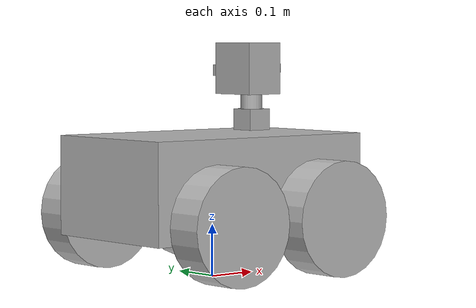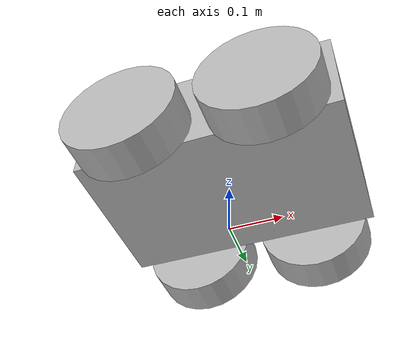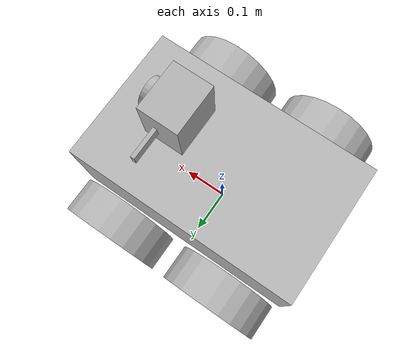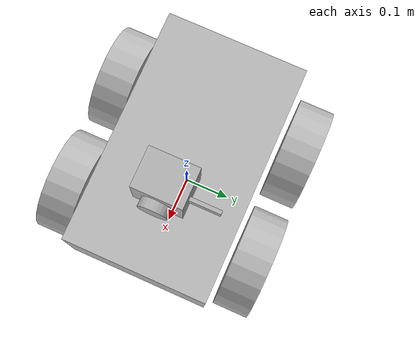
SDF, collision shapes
<?xml version="1.0" ?>
<sdf version="1.6">
  <model name="robot">

    <pose>0 0 0.180 0 0 0</pose>

    <link name="base_footprint"/>

    <link name="base_link">

      <inertial>
        <mass>14.0</mass>
        <inertia>
          <ixx>0.147116667</ixx>
          <ixy>0.0</ixy>
          <ixz>0.0</ixz>
          <iyy>0.334951167</iyy>
          <iyz>0.0</iyz>
          <izz>0.3978345</izz>
        </inertia>
      </inertial>
      <collision name="base_collision">
        <geometry>
          <box>
            <size>0.501 0.300 0.19</size>
          </box>
        </geometry>
      </collision>
      <visual name="base_visual">
        <geometry>
          <mesh>
            <uri>model://p3at/meshes/chassis.dae</uri>
          </mesh>
        </geometry>
      </visual>
    </link>

    <link name="imu_link">
      <sensor name="p3at_imu" type="imu">
        <always_on>true</always_on>
        <update_rate>200</update_rate>
        <imu>
          <angular_velocity>
            <x>
              <noise type="gaussian">
                <mean>0.0</mean>
                <stddev>2e-4</stddev>
              </noise>
            </x>
            <y>
              <noise type="gaussian">
                <mean>0.0</mean>
                <stddev>2e-4</stddev>
              </noise>
            </y>
            <z>
              <noise type="gaussian">
                <mean>0.0</mean>
                <stddev>2e-4</stddev>
              </noise>
            </z>
          </angular_velocity>
          <linear_acceleration>
            <x>
              <noise type="gaussian">
                <mean>0.0</mean>
                <stddev>1.7e-2</stddev>
              </noise>
            </x>
            <y>
              <noise type="gaussian">
                <mean>0.0</mean>
                <stddev>1.7e-2</stddev>
              </noise>
            </y>
            <z>
              <noise type="gaussian">
                <mean>0.0</mean>
                <stddev>1.7e-2</stddev>
              </noise>
            </z>
          </linear_acceleration>
        </imu>
        <plugin name="p3at_imu" filename="libgazebo_ros_imu_sensor.so">
          <initial_orientation_as_reference>false</initial_orientation_as_reference>
          <ros>
            <remapping>~/out:=imu</remapping>
          </ros>
        </plugin>
      </sensor>
    </link>

    <link name="base_scan">
      <pose>0.1 0 0.135 0 0 0</pose>
      <inertial>
        <mass>0.1</mass>
        <inertia>
          <ixx>0.6205208333e-04</ixx>
          <iyy>0.6205208333e-04</iyy>
          <izz>4.1927083333e-05</izz>
        </inertia>
      </inertial>
      <visual name="visual-base">
        <pose>0 0 -0.0145 0 0 0</pose>
        <geometry>
          <box>
            <size>0.05 0.05 0.041</size>
          </box>
        </geometry>
        <material>
          <ambient>0.3 0.3 0.3 1</ambient>
          <diffuse>0.7 0.7 0.7 1</diffuse>
          <specular>0.1 0.1 0.1 1</specular>
          <emissive>0 0 0 0</emissive>
        </material>
      </visual>
      <visual name="visual-top">
        <pose>0 0 0.0205 0 0 0</pose>
        <geometry>
          <cylinder>
            <radius>0.021</radius>
            <length>0.029</length>
          </cylinder>
        </geometry>
        <material>
          <ambient>0 0 0 1</ambient>
          <diffuse>0 0 0 1</diffuse>
          <specular>0.1 0.1 0.1 1</specular>
          <emissive>0 0 0 0</emissive>
        </material>
      </visual>
      <visual name="visual-top-back">
        <pose>-0.02 0 0.019 0 0 0</pose>
        <geometry>
          <box>
            <size>0.01 0.01 0.025</size>
          </box>
        </geometry>
        <material>
          <ambient>0.1 0.1 0.1 1</ambient>
          <diffuse>0.3 0.3 0.3 1</diffuse>
          <specular>0.1 0.1 0.1 1</specular>
          <emissive>0 0 0 0</emissive>
        </material>
      </visual>
      <collision name="collision-base">
        <pose>0 0 -0.0145 0 0 0</pose>
        <geometry>
          <box>
            <size>0.05 0.05 0.041</size>
          </box>
        </geometry>
      </collision>
      <collision name="collision-top">
        <pose>0 0 0.0205 0 0 0</pose>
        <geometry>
          <cylinder>
            <radius>0.021</radius>
            <length>0.029</length>
          </cylinder>
        </geometry>
      </collision>

      <sensor name="hls_lfcd_lds" type="ray">
        <always_on>true</always_on>
        <visualize>false</visualize>
        <pose>-0.064 0 0.021 0 0 0</pose>
        <update_rate>5</update_rate>
        <ray>
          <scan>
            <horizontal>
		          <samples>181</samples>
		          <resolution>1</resolution>
		          <min_angle>-1.570796</min_angle>
		          <max_angle>1.570796</max_angle>
            </horizontal>
          </scan>
          <range>
            <min>0.1</min>
            <max>30</max>
            <resolution>0.001</resolution>
          </range>
          <noise>
            <type>gaussian</type>
            <mean>0.0</mean>
            <stddev>0.01</stddev>
          </noise>
        </ray>
        <plugin name="p3at_laserscan" filename="libgazebo_ros_ray_sensor.so">
          <ros>
              <remapping>~/out:=scan</remapping>
          </ros>
          <output_type>sensor_msgs/LaserScan</output_type>
          <frame_name>base_scan</frame_name>
        </plugin>
      </sensor>
    </link>

    <!-- begin of sonar added by Arnoud Visser - July 2022 -->
    <link name="front_sonar">
        <pose> 0.21 0 +0.08 0 0 0 </pose>
        <inertial>
            <mass>0.1</mass>
            <pose> 0.0 0 0.0 0 0 0 </pose>
            <inertia>
                <ixx>1.0</ixx>
                <ixy>0.0</ixy>
                <ixz>0.0</ixz>
                <iyy>1.0</iyy>
                <iyz>0.0</iyz>
                <izz>1.0</izz>
            </inertia>
        </inertial>
        <sensor name="so0" type="ray">
            <always_on>true</always_on>
            <visualize>false</visualize>
            <pose>-0.065 +0.165 0 0 0 +1.5707963268</pose> <!-- 90 degrees -->
            <update_rate>3</update_rate>
            <ray>
                <scan>
                  <horizontal>
                      <samples>4</samples>
                      <angle_increment>0.0698131701</angle_increment><!-- 4 degrees -->
                      <min_angle>-0.1396263402</min_angle>
                      <max_angle>+0.1396263402</max_angle> <!-- opening angle of 16 degrees -->
                  </horizontal>
                  <vertical>
                      <samples>4</samples>
                      <angle_increment>0.0698131701</angle_increment><!-- 4 degrees -->
                      <min_angle>-0.1396263402</min_angle>
                      <max_angle>+0.1396263402</max_angle> <!-- opening angle of 16 degrees -->
                  </vertical>
                </scan>
                <range>
                    <min>0.1</min>
                    <max>4</max>
                    <resolution>0.2</resolution>
                </range>
                <noise>
                    <type>gaussian</type>
                    <mean>0.0</mean>
                    <stddev>0.1</stddev>
                </noise>
            </ray>
            <plugin name="p3at_front_sonar" filename="libgazebo_ros_ray_sensor.so">
                 <ros>
                     <remapping>~/out:=so0/range</remapping>
                 </ros>
                 <output_type>sensor_msgs/Range</output_type>
                 <frame_name>front_sonar</frame_name>
            </plugin>
        </sensor>
        <sensor name="so1" type="ray">
            <always_on>true</always_on>
            <visualize>false</visualize>
            <pose>-0.035 +0.1025 0 0 0 +0.872664626</pose> <!-- 50 degrees -->
            <update_rate>3</update_rate>
            <ray>
                <scan>
                  <horizontal>
                      <samples>4</samples>
                      <angle_increment>0.0698131701</angle_increment><!-- 4 degrees -->
                      <min_angle>-0.1396263402</min_angle>
                      <max_angle>+0.1396263402</max_angle> <!-- opening angle of 16 degrees -->
                  </horizontal>
                  <vertical>
                      <samples>4</samples>
                      <angle_increment>0.0698131701</angle_increment><!-- 4 degrees -->
                      <min_angle>-0.1396263402</min_angle>
                      <max_angle>+0.1396263402</max_angle> <!-- opening angle of 16 degrees -->
                  </vertical>
                </scan>
                <range>
                    <min>0.1</min>
                    <max>4</max>
                    <resolution>0.2</resolution>
                </range>
                <noise>
                    <type>gaussian</type>
                    <mean>0.0</mean>
                    <stddev>0.1</stddev>
                </noise>
            </ray>
            <plugin name="p3at_front_sonar" filename="libgazebo_ros_ray_sensor.so">
                 <ros>
                     <remapping>~/out:=so1/range</remapping>
                 </ros>
                 <output_type>sensor_msgs/Range</output_type>
                 <frame_name>front_sonar</frame_name>
            </plugin>
        </sensor>
        <sensor name="so2" type="ray">
            <always_on>true</always_on>
            <visualize>false</visualize>
            <pose>-0.02 +0.0575 0 0 0 +0.5235987756</pose> <!-- 30 degrees -->
            <update_rate>3</update_rate>
            <ray>
                <scan>
                  <horizontal>
                      <samples>4</samples>
                      <angle_increment>0.0698131701</angle_increment><!-- 4 degrees -->
                      <min_angle>-0.1396263402</min_angle>
                      <max_angle>+0.1396263402</max_angle> <!-- opening angle of 16 degrees -->
                  </horizontal>
                  <vertical>
                      <samples>4</samples>
                      <angle_increment>0.0698131701</angle_increment><!-- 4 degrees -->
                      <min_angle>-0.1396263402</min_angle>
                      <max_angle>+0.1396263402</max_angle> <!-- opening angle of 16 degrees -->
                  </vertical>
                </scan>
                <range>
                    <min>0.1</min>
                    <max>4</max>
                    <resolution>0.2</resolution>
                </range>
                <noise>
                    <type>gaussian</type>
                    <mean>0.0</mean>
                    <stddev>0.1</stddev>
                </noise>
            </ray>
            <plugin name="p3at_front_sonar" filename="libgazebo_ros_ray_sensor.so">
                 <ros>
                     <remapping>~/out:=so2/range</remapping>
                 </ros>
                 <output_type>sensor_msgs/Range</output_type>
                 <frame_name>front_sonar</frame_name>
            </plugin>
        </sensor>
        <sensor name="so3" type="ray">
            <always_on>true</always_on>
            <visualize>false</visualize>
            <pose>-0.01 +0.0115 0 0 0 +0.1745329252</pose> <!-- 10 degrees -->
            <update_rate>3</update_rate>
            <ray>
                <scan>
                  <horizontal>
                      <samples>4</samples>
                      <angle_increment>0.0698131701</angle_increment><!-- 4 degrees -->
                      <min_angle>-0.1396263402</min_angle>
                      <max_angle>+0.1396263402</max_angle> <!-- opening angle of 16 degrees -->
                  </horizontal>
                  <vertical>
                      <samples>4</samples>
                      <angle_increment>0.0698131701</angle_increment><!-- 4 degrees -->
                      <min_angle>-0.1396263402</min_angle>
                      <max_angle>+0.1396263402</max_angle> <!-- opening angle of 16 degrees -->
                  </vertical>
                </scan>
                <range>
                    <min>0.1</min>
                    <max>4</max>
                    <resolution>0.2</resolution>
                </range>
                <noise>
                    <type>gaussian</type>
                    <mean>0.0</mean>
                    <stddev>0.1</stddev>
                </noise>
            </ray>
            <plugin name="p3at_front_sonar" filename="libgazebo_ros_ray_sensor.so">
                 <ros>
                     <remapping>~/out:=so3/range</remapping>
                 </ros>
                 <output_type>sensor_msgs/Range</output_type>
                 <frame_name>front_sonar</frame_name>
            </plugin>
        </sensor>
        <sensor name="so4" type="ray">
            <always_on>true</always_on>
            <visualize>false</visualize>
            <pose>-0.01 -0.0115 0 0 0 -0.1745329252</pose> <!-- 10 degrees -->
            <update_rate>3</update_rate>
            <ray>
                <scan>
                  <horizontal>
                      <samples>4</samples>
                      <angle_increment>0.0698131701</angle_increment><!-- 4 degrees -->
                      <min_angle>-0.1396263402</min_angle>
                      <max_angle>+0.1396263402</max_angle> <!-- opening angle of 16 degrees -->
                  </horizontal>
                  <vertical>
                      <samples>4</samples>
                      <angle_increment>0.0698131701</angle_increment><!-- 4 degrees -->
                      <min_angle>-0.1396263402</min_angle>
                      <max_angle>+0.1396263402</max_angle> <!-- opening angle of 16 degrees -->
                  </vertical>
                </scan>
                <range>
                    <min>0.1</min>
                    <max>4</max>
                    <resolution>0.2</resolution>
                </range>
                <noise>
                    <type>gaussian</type>
                    <mean>0.0</mean>
                    <stddev>0.1</stddev>
                </noise>
            </ray>
            <plugin name="p3at_front_sonar" filename="libgazebo_ros_ray_sensor.so">
                 <ros>
                     <remapping>~/out:=so4/range</remapping>
                 </ros>
                 <output_type>sensor_msgs/Range</output_type>
                 <frame_name>front_sonar</frame_name>
            </plugin>
        </sensor>
        <sensor name="so5" type="ray">
            <always_on>true</always_on>
            <visualize>false</visualize>
            <pose>-0.02 -0.0575 0 0 0 -0.5235987756</pose> <!-- 30 degrees -->
            <update_rate>3</update_rate>
            <ray>
                <scan>
                  <horizontal>
                      <samples>4</samples>
                      <angle_increment>0.0698131701</angle_increment><!-- 4 degrees -->
                      <min_angle>-0.1396263402</min_angle>
                      <max_angle>+0.1396263402</max_angle> <!-- opening angle of 16 degrees -->
                  </horizontal>
                  <vertical>
                      <samples>4</samples>
                      <angle_increment>0.0698131701</angle_increment><!-- 4 degrees -->
                      <min_angle>-0.1396263402</min_angle>
                      <max_angle>+0.1396263402</max_angle> <!-- opening angle of 16 degrees -->
                  </vertical>
                </scan>
                <range>
                    <min>0.1</min>
                    <max>4</max>
                    <resolution>0.2</resolution>
                </range>
                <noise>
                    <type>gaussian</type>
                    <mean>0.0</mean>
                    <stddev>0.1</stddev>
                </noise>
            </ray>
            <plugin name="p3at_front_sonar" filename="libgazebo_ros_ray_sensor.so">
                 <ros>
                     <remapping>~/out:=so5/range</remapping>
                 </ros>
                 <output_type>sensor_msgs/Range</output_type>
                 <frame_name>front_sonar</frame_name>
            </plugin>
        </sensor>
        <sensor name="so6" type="ray">
            <always_on>true</always_on>
            <visualize>false</visualize>
            <pose>-0.035 -0.1025 0 0 0 -0.872664626</pose> <!-- 50 degrees -->
            <update_rate>3</update_rate>
            <ray>
                <scan>
                  <horizontal>
                      <samples>4</samples>
                      <angle_increment>0.0698131701</angle_increment><!-- 4 degrees -->
                      <min_angle>-0.1396263402</min_angle>
                      <max_angle>+0.1396263402</max_angle> <!-- opening angle of 16 degrees -->
                  </horizontal>
                  <vertical>
                      <samples>4</samples>
                      <angle_increment>0.0698131701</angle_increment><!-- 4 degrees -->
                      <min_angle>-0.1396263402</min_angle>
                      <max_angle>+0.1396263402</max_angle> <!-- opening angle of 16 degrees -->
                  </vertical>
                </scan>
                <range>
                    <min>0.1</min>
                    <max>4</max>
                    <resolution>0.2</resolution>
                </range>
                <noise>
                    <type>gaussian</type>
                    <mean>0.0</mean>
                    <stddev>0.1</stddev>
                </noise>
            </ray>
            <plugin name="p3at_front_sonar" filename="libgazebo_ros_ray_sensor.so">
                 <ros>
                     <remapping>~/out:=so6/range</remapping>
                 </ros>
                 <output_type>sensor_msgs/Range</output_type>
                 <frame_name>front_sonar</frame_name>
            </plugin>
        </sensor>
        <sensor name="so7" type="ray">
            <always_on>true</always_on>
            <visualize>false</visualize>
            <pose>-0.065 -0.165 0 0 0 -1.5707963268</pose> <!-- 90 degrees -->
            <update_rate>3</update_rate>
            <ray>
                <scan>
                  <horizontal>
                      <samples>4</samples>
                      <angle_increment>0.0698131701</angle_increment><!-- 4 degrees -->
                      <min_angle>-0.1396263402</min_angle>
                      <max_angle>+0.1396263402</max_angle> <!-- opening angle of 16 degrees -->
                  </horizontal>
                  <vertical>
                      <samples>4</samples>
                      <angle_increment>0.0698131701</angle_increment><!-- 4 degrees -->
                      <min_angle>-0.1396263402</min_angle>
                      <max_angle>+0.1396263402</max_angle> <!-- opening angle of 16 degrees -->
                  </vertical>
                </scan>
                <range>
                    <min>0.1</min>
                    <max>4</max>
                    <resolution>0.2</resolution>
                </range>
                <noise>
                    <type>gaussian</type>
                    <mean>0.0</mean>
                    <stddev>0.1</stddev>
                </noise>
            </ray>
            <plugin name="p3at_front_sonar" filename="libgazebo_ros_ray_sensor.so">
                 <ros>
                     <remapping>~/out:=so7/range</remapping>
                 </ros>
                 <output_type>sensor_msgs/Range</output_type>
                 <frame_name>front_sonar</frame_name>
            </plugin>
        </sensor>
    </link>
    <joint name="base_front_joint" type="fixed">
        <pose> 0.0 0 0.0 0 0 0 </pose>
        <parent>base_link</parent>
        <child>front_sonar</child>
    </joint>
    <link name="back_sonar">
        <pose> -0.21 0 +0.08 0 0 3.1415926536 </pose>
        <inertial>
            <mass>0.1</mass>
            <pose> 0.0 0 0.0 0 0 0 </pose>
            <inertia>
                <ixx>1.0</ixx>
                <ixy>0.0</ixy>
                <ixz>0.0</ixz>
                <iyy>1.0</iyy>
                <iyz>0.0</iyz>
                <izz>1.0</izz>
            </inertia>
        </inertial>
        <sensor name="so8" type="ray">
            <always_on>true</always_on>
            <visualize>false</visualize>
            <pose>-0.065 +0.165 0 0 0 +1.5707963268</pose> <!-- 90 degrees -->
            <update_rate>3</update_rate>
            <ray>
                <scan>
                  <horizontal>
                      <samples>4</samples>
                      <angle_increment>0.0698131701</angle_increment><!-- 4 degrees -->
                      <min_angle>-0.1396263402</min_angle>
                      <max_angle>+0.1396263402</max_angle> <!-- opening angle of 16 degrees -->
                  </horizontal>
                  <vertical>
                      <samples>4</samples>
                      <angle_increment>0.0698131701</angle_increment><!-- 4 degrees -->
                      <min_angle>-0.1396263402</min_angle>
                      <max_angle>+0.1396263402</max_angle> <!-- opening angle of 16 degrees -->
                  </vertical>
                </scan>
                <range>
                    <min>0.1</min>
                    <max>4</max>
                    <resolution>0.2</resolution>
                </range>
                <noise>
                    <type>gaussian</type>
                    <mean>0.0</mean>
                    <stddev>0.1</stddev>
                </noise>
            </ray>
            <plugin name="p3at_back_sonar" filename="libgazebo_ros_ray_sensor.so">
                 <ros>
                     <remapping>~/out:=so8/range</remapping>
                 </ros>
                 <output_type>sensor_msgs/Range</output_type>
                 <frame_name>back_sonar</frame_name>
            </plugin>
        </sensor>
        <sensor name="so9" type="ray">
            <always_on>true</always_on>
            <visualize>false</visualize>
            <pose>-0.035 +0.1025 0 0 0 +0.872664626</pose> <!-- 50 degrees -->
            <update_rate>3</update_rate>
            <ray>
                <scan>
                  <horizontal>
                      <samples>4</samples>
                      <angle_increment>0.0698131701</angle_increment><!-- 4 degrees -->
                      <min_angle>-0.1396263402</min_angle>
                      <max_angle>+0.1396263402</max_angle> <!-- opening angle of 16 degrees -->
                  </horizontal>
                  <vertical>
                      <samples>4</samples>
                      <angle_increment>0.0698131701</angle_increment><!-- 4 degrees -->
                      <min_angle>-0.1396263402</min_angle>
                      <max_angle>+0.1396263402</max_angle> <!-- opening angle of 16 degrees -->
                  </vertical>
                </scan>
                <range>
                    <min>0.1</min>
                    <max>4</max>
                    <resolution>0.2</resolution>
                </range>
                <noise>
                    <type>gaussian</type>
                    <mean>0.0</mean>
                    <stddev>0.1</stddev>
                </noise>
            </ray>
            <plugin name="p3at_back_sonar" filename="libgazebo_ros_ray_sensor.so">
                 <ros>
                     <remapping>~/out:=so9/range</remapping>
                 </ros>
                 <output_type>sensor_msgs/Range</output_type>
                 <frame_name>back_sonar</frame_name>
            </plugin>
        </sensor>
        <sensor name="so10" type="ray">
            <always_on>true</always_on>
            <visualize>false</visualize>
            <pose>-0.02 +0.0575 0 0 0 +0.5235987756</pose> <!-- 30 degrees -->
            <update_rate>3</update_rate>
            <ray>
                <scan>
                  <horizontal>
                      <samples>4</samples>
                      <angle_increment>0.0698131701</angle_increment><!-- 4 degrees -->
                      <min_angle>-0.1396263402</min_angle>
                      <max_angle>+0.1396263402</max_angle> <!-- opening angle of 16 degrees -->
                  </horizontal>
                  <vertical>
                      <samples>4</samples>
                      <angle_increment>0.0698131701</angle_increment><!-- 4 degrees -->
                      <min_angle>-0.1396263402</min_angle>
                      <max_angle>+0.1396263402</max_angle> <!-- opening angle of 16 degrees -->
                  </vertical>
                </scan>
                <range>
                    <min>0.1</min>
                    <max>4</max>
                    <resolution>0.2</resolution>
                </range>
                <noise>
                    <type>gaussian</type>
                    <mean>0.0</mean>
                    <stddev>0.1</stddev>
                </noise>
            </ray>
            <plugin name="p3at_back_sonar" filename="libgazebo_ros_ray_sensor.so">
                 <ros>
                     <remapping>~/out:=so10/range</remapping>
                 </ros>
                 <output_type>sensor_msgs/Range</output_type>
                 <frame_name>back_sonar</frame_name>
            </plugin>
        </sensor>
        <sensor name="so11" type="ray">
            <always_on>true</always_on>
            <visualize>false</visualize>
            <pose>-0.01 +0.0115 0 0 0 +0.1745329252</pose> <!-- 10 degrees -->
            <update_rate>3</update_rate>
            <ray>
                <scan>
                  <horizontal>
                      <samples>4</samples>
                      <angle_increment>0.0698131701</angle_increment><!-- 4 degrees -->
                      <min_angle>-0.1396263402</min_angle>
                      <max_angle>+0.1396263402</max_angle> <!-- opening angle of 16 degrees -->
                  </horizontal>
                  <vertical>
                      <samples>4</samples>
                      <angle_increment>0.0698131701</angle_increment><!-- 4 degrees -->
                      <min_angle>-0.1396263402</min_angle>
                      <max_angle>+0.1396263402</max_angle> <!-- opening angle of 16 degrees -->
                  </vertical>
                </scan>
                <range>
                    <min>0.1</min>
                    <max>4</max>
                    <resolution>0.2</resolution>
                </range>
                <noise>
                    <type>gaussian</type>
                    <mean>0.0</mean>
                    <stddev>0.1</stddev>
                </noise>
            </ray>
            <plugin name="p3at_back_sonar" filename="libgazebo_ros_ray_sensor.so">
                 <ros>
                     <remapping>~/out:=so11/range</remapping>
                 </ros>
                 <output_type>sensor_msgs/Range</output_type>
                 <frame_name>back_sonar</frame_name>
            </plugin>
        </sensor>
        <sensor name="so12" type="ray">
            <always_on>true</always_on>
            <visualize>false</visualize>
            <pose>-0.01 -0.0115 0 0 0 -0.1745329252</pose> <!-- 10 degrees -->
            <update_rate>3</update_rate>
            <ray>
                <scan>
                  <horizontal>
                      <samples>4</samples>
                      <angle_increment>0.0698131701</angle_increment><!-- 4 degrees -->
                      <min_angle>-0.1396263402</min_angle>
                      <max_angle>+0.1396263402</max_angle> <!-- opening angle of 16 degrees -->
                  </horizontal>
                  <vertical>
                      <samples>4</samples>
                      <angle_increment>0.0698131701</angle_increment><!-- 4 degrees -->
                      <min_angle>-0.1396263402</min_angle>
                      <max_angle>+0.1396263402</max_angle> <!-- opening angle of 16 degrees -->
                  </vertical>
                </scan>
                <range>
                    <min>0.1</min>
                    <max>4</max>
                    <resolution>0.2</resolution>
                </range>
                <noise>
                    <type>gaussian</type>
                    <mean>0.0</mean>
                    <stddev>0.1</stddev>
                </noise>
            </ray>
            <plugin name="p3at_back_sonar" filename="libgazebo_ros_ray_sensor.so">
                 <ros>
                     <remapping>~/out:=so12/range</remapping>
                 </ros>
                 <output_type>sensor_msgs/Range</output_type>
                 <frame_name>back_sonar</frame_name>
            </plugin>
        </sensor>
        <sensor name="so13" type="ray">
            <always_on>true</always_on>
            <visualize>false</visualize>
            <pose>-0.02 -0.0575 0 0 0 -0.5235987756</pose> <!-- 30 degrees -->
            <update_rate>3</update_rate>
            <ray>
                <scan>
                  <horizontal>
                      <samples>4</samples>
                      <angle_increment>0.0698131701</angle_increment><!-- 4 degrees -->
                      <min_angle>-0.1396263402</min_angle>
                      <max_angle>+0.1396263402</max_angle> <!-- opening angle of 16 degrees -->
                  </horizontal>
                  <vertical>
                      <samples>4</samples>
                      <angle_increment>0.0698131701</angle_increment><!-- 4 degrees -->
                      <min_angle>-0.1396263402</min_angle>
                      <max_angle>+0.1396263402</max_angle> <!-- opening angle of 16 degrees -->
                  </vertical>
                </scan>
                <range>
                    <min>0.1</min>
                    <max>4</max>
                    <resolution>0.2</resolution>
                </range>
                <noise>
                    <type>gaussian</type>
                    <mean>0.0</mean>
                    <stddev>0.1</stddev>
                </noise>
            </ray>
            <plugin name="p3at_back_sonar" filename="libgazebo_ros_ray_sensor.so">
                 <ros>
                     <remapping>~/out:=so13/range</remapping>
                 </ros>
                 <output_type>sensor_msgs/Range</output_type>
                 <frame_name>back_sonar</frame_name>
            </plugin>
        </sensor>
        <sensor name="so14" type="ray">
            <always_on>true</always_on>
            <visualize>false</visualize>
            <pose>-0.035 -0.1025 0 0 0 -0.872664626</pose> <!-- 50 degrees -->
            <update_rate>3</update_rate>
            <ray>
                <scan>
                  <horizontal>
                      <samples>4</samples>
                      <angle_increment>0.0698131701</angle_increment><!-- 4 degrees -->
                      <min_angle>-0.1396263402</min_angle>
                      <max_angle>+0.1396263402</max_angle> <!-- opening angle of 16 degrees -->
                  </horizontal>
                  <vertical>
                      <samples>4</samples>
                      <angle_increment>0.0698131701</angle_increment><!-- 4 degrees -->
                      <min_angle>-0.1396263402</min_angle>
                      <max_angle>+0.1396263402</max_angle> <!-- opening angle of 16 degrees -->
                  </vertical>
                </scan>
                <range>
                    <min>0.1</min>
                    <max>4</max>
                    <resolution>0.2</resolution>
                </range>
                <noise>
                    <type>gaussian</type>
                    <mean>0.0</mean>
                    <stddev>0.1</stddev>
                </noise>
            </ray>
            <plugin name="p3at_back_sonar" filename="libgazebo_ros_ray_sensor.so">
                 <ros>
                     <remapping>~/out:=so14/range</remapping>
                 </ros>
                 <output_type>sensor_msgs/Range</output_type>
                 <frame_name>back_sonar</frame_name>
            </plugin>
        </sensor>
        <sensor name="so15" type="ray">
            <always_on>true</always_on>
            <visualize>false</visualize>
            <pose>-0.065 -0.165 0 0 0 -1.5707963268</pose> <!-- 90 degrees -->
            <update_rate>3</update_rate>
            <ray>
                <scan>
                  <horizontal>
                      <samples>4</samples>
                      <angle_increment>0.0698131701</angle_increment><!-- 4 degrees -->
                      <min_angle>-0.1396263402</min_angle>
                      <max_angle>+0.1396263402</max_angle> <!-- opening angle of 16 degrees -->
                  </horizontal>
                  <vertical>
                      <samples>4</samples>
                      <angle_increment>0.0698131701</angle_increment><!-- 4 degrees -->
                      <min_angle>-0.1396263402</min_angle>
                      <max_angle>+0.1396263402</max_angle> <!-- opening angle of 16 degrees -->
                  </vertical>
                </scan>
                <range>
                    <min>0.1</min>
                    <max>4</max>
                    <resolution>0.2</resolution>
                </range>
                <noise>
                    <type>gaussian</type>
                    <mean>0.0</mean>
                    <stddev>0.1</stddev>
                </noise>
            </ray>
            <plugin name="p3at_back_sonar" filename="libgazebo_ros_ray_sensor.so">
                 <ros>
                     <remapping>~/out:=so15/range</remapping>
                 </ros>
                 <output_type>sensor_msgs/Range</output_type>
                 <frame_name>back_sonar</frame_name>
            </plugin>
        </sensor>
    </link>
    <joint name="base_back_joint" type="fixed">
        <pose> 0.0 0 0.0 0 0 0 </pose>
        <parent>base_link</parent>
        <child>back_sonar</child>
    </joint>
    <!-- end of sonar added by Arnoud Visser - July 2022 -->

    <link name="right_front_wheel">
      <pose>0.125 -0.201 -0.06 1.5707 0 0</pose>

      <inertial>
        <mass>1.5</mass>
        <inertia>
          <ixx>0.005240625</ixx>
          <iyy>0.005240625</iyy>
          <izz>0.009075</izz>
          <ixy>0</ixy>
          <ixz>0</ixz>
          <iyz>0</iyz>
        </inertia>
      </inertial>

      <collision name="collision">
        <geometry>
          <cylinder>
            <radius>0.110</radius>
            <length>0.075</length>
          </cylinder>
        </geometry>
        <surface>
          <friction>
            <ode>
              <mu>1</mu>
              <mu2>1</mu2>

            </ode>
          </friction>
        </surface>
      </collision>
      <visual name="visual">
        <geometry>
          <mesh>
            <uri>model://p3at/meshes/wheel.dae</uri>
          </mesh>
        </geometry>
      </visual>
    </link>
    <link name="left_front_wheel">
      <pose>0.125 0.201 -0.06 1.5707 0 0</pose>

      <inertial>
        <mass>1.5</mass>
        <inertia>
          <ixx>0.005240625</ixx>
          <iyy>0.005240625</iyy>
          <izz>0.009075</izz>
          <ixy>0</ixy>
          <ixz>0</ixz>
          <iyz>0</iyz>
        </inertia>
      </inertial>

      <collision name="collision">
        <geometry>
          <cylinder>
            <radius>0.110</radius>
            <length>0.075</length>
          </cylinder>
        </geometry>
        <surface>
          <friction>
            <ode>
              <mu>1</mu>
              <mu2>1</mu2>

            </ode>
          </friction>
        </surface>
      </collision>
      <visual name="visual">
        <geometry>
          <mesh>
            <uri>model://p3at/meshes/wheel.dae</uri>
          </mesh>
        </geometry>
      </visual>
    </link>
    <link name="right_rear_wheel">
      <pose>-0.125 -0.201 -0.06 1.5707 0 0</pose>

      <inertial>
        <mass>1.5</mass>
        <inertia>
          <ixx>0.005240625</ixx>
          <iyy>0.005240625</iyy>
          <izz>0.009075</izz>
          <ixy>0</ixy>
          <ixz>0</ixz>
          <iyz>0</iyz>
        </inertia>
      </inertial>

      <collision name="collision">
        <geometry>
          <cylinder>
            <radius>0.110</radius>
            <length>0.075</length>
          </cylinder>
        </geometry>
        <surface>
          <friction>
            <ode>
              <mu>1</mu>
              <mu2>1</mu2>
            </ode>
          </friction>
        </surface>
      </collision>
      <visual name="visual">
        <geometry>
          <mesh>
            <uri>model://p3at/meshes/wheel.dae</uri>
          </mesh>
        </geometry>
      </visual>
    </link>
    <link name="left_rear_wheel">
      <pose>-0.125 0.201 -0.06 1.5707 0 0</pose>

      <inertial>
        <mass>1.5</mass>
        <inertia>
          <ixx>0.005240625</ixx>
          <iyy>0.005240625</iyy>
          <izz>0.009075</izz>
          <ixy>0</ixy>
          <ixz>0</ixz>
          <iyz>0</iyz>
        </inertia>
      </inertial>

      <collision name="collision">
        <geometry>
          <cylinder>
            <radius>0.110</radius>
            <length>0.075</length>
          </cylinder>
        </geometry>
        <surface>
          <friction>
            <ode>
              <mu>1</mu>
              <mu2>1</mu2>
            </ode>
          </friction>
        </surface>
      </collision>
      <visual name="visual">
        <geometry>
          <mesh>
            <uri>model://p3at/meshes/wheel.dae</uri>
          </mesh>
        </geometry>
      </visual>
    </link>

    <joint type="revolute" name="right_front">
      <pose>0 0 0 0 0 0</pose>
      <child>right_front_wheel</child>
      <parent>base_link</parent>
      <axis>
        <xyz>0 1 0</xyz>
        <use_parent_model_frame>true</use_parent_model_frame>
      </axis>
    </joint>

    <joint type="revolute" name="right_rear">
      <pose>0 0 0 0 0 0</pose>
      <child>right_rear_wheel</child>
      <parent>base_link</parent>
      <axis>
        <xyz>0 1 0</xyz>
        <use_parent_model_frame>true</use_parent_model_frame>
      </axis>
    </joint>

    <joint type="revolute" name="left_front">
      <pose>0 0 0 0 0 0</pose>
      <child>left_front_wheel</child>
      <parent>base_link</parent>
      <axis>
        <xyz>0 1 0</xyz>
        <use_parent_model_frame>true</use_parent_model_frame>
      </axis>
    </joint>

    <joint type="revolute" name="left_rear">
      <pose>0 0 0 0 0 0</pose>
      <child>left_rear_wheel</child>
      <parent>base_link</parent>
      <axis>
        <xyz>0 1 0</xyz>
        <use_parent_model_frame>true</use_parent_model_frame>
      </axis>
    </joint>

    <link name="camera_link">
      <pose>0.1 0 0.22 0 0 0</pose>
      <audio_sink /> <!-- Camera and microphone should be combined -->
      <inertial>
        <mass>0.1</mass>
        <inertia>
          <ixx>0.000166667</ixx>
          <iyy>0.000166667</iyy>
          <izz>0.000166667</izz>
        </inertia>
      </inertial>
      <collision name="collision-box">
        <pose>-0.01 0 0 0 0 0</pose>
        <geometry>
          <box>
            <size>0.08 0.1 0.1</size>
          </box>
        </geometry>
      </collision>
      <collision name="collision-lens">
        <pose>0.04 0 0 0 1.57 0</pose>
        <geometry>
          <cylinder>
            <radius>0.03</radius>
            <length>0.02</length>
          </cylinder>
        </geometry>
      </collision>
      <visual name="visual-box">
        <pose>-0.01 0 0 0 0 0</pose>
        <geometry>
          <box>
            <size>0.08 0.1 0.1</size>
          </box>
        </geometry>
        <material>
          <ambient>0.3 0.3 0.3 1</ambient>
          <diffuse>0.7 0.7 0.7 1</diffuse>
          <specular>0.1 0.1 0.1 1</specular>
          <emissive>0 0 0 0</emissive>
        </material>
      </visual>
      <visual name="visual-lens">
        <pose>0.04 0 0 0 1.57 0</pose>
        <geometry>
          <cylinder>
            <radius>0.03</radius>
            <length>0.02</length>
          </cylinder>
        </geometry>
        <material>
          <ambient>0 0 0 1</ambient>
          <diffuse>0 0 0 1</diffuse>
          <specular>0.1 0.1 0.1 1</specular>
          <emissive>0 0 0 0</emissive>
        </material>
      </visual>

      <sensor name="intel_realsense_r200_depth" type="depth">
        <always_on>1</always_on>
        <update_rate>5</update_rate>
        <pose>0.064 -0.047 0.107 0 0 0</pose>
        <camera name="realsense_depth_camera">
        </camera>
        <plugin name="intel_realsense_r200_depth_driver" filename="libgazebo_ros_camera.so">
          <ros>
          </ros>
          <camera_name>camera</camera_name>
          <frame_name>camera_frame</frame_name>
          <hack_baseline>0.07</hack_baseline>
          <min_depth>0.001</min_depth>
          <max_depth>5.0</max_depth>
        </plugin>
      </sensor>

      <collision name="collision">
        <pose>0 0.047 -0.005 0 0 0</pose>
        <geometry>
          <box>
            <size>0.008 0.130 0.022</size>
          </box>
        </geometry>
      </collision>
      <pose>0.069 -0.047 0.107 0 0 0</pose>
    </link>

    <joint name="base_joint" type="fixed">
      <parent>base_footprint</parent>
      <child>base_link</child>
      <pose>0.0 0.0 0.010 0 0 0</pose>
    </joint>

    <joint name="lidar_joint" type="fixed">
      <parent>base_link</parent>
      <child>base_scan</child>
      <pose>-0.064 0 0.121 0 0 0</pose>
      <axis>
        <xyz>0 0 1</xyz>
      </axis>
    </joint>

    <joint name="camera_joint" type="fixed">
      <parent>base_link</parent>
      <child>camera_link</child>
      <pose>0.064 -0.065 0.094 0 0 0</pose>
      <axis>
        <xyz>0 0 1</xyz>
      </axis>
    </joint>

    <joint name="camera_rgb_joint" type="fixed">
      <parent>camera_link</parent>
      <child>camera_rgb_frame</child>
      <pose>0.005 0.018 0.013 0 0 0</pose>
      <axis>
        <xyz>0 0 1</xyz>
      </axis>
    </joint>

    <plugin name='skid_steer_drive' filename='libgazebo_ros_diff_drive.so'>

      <ros>
        <remapping>/tf:=tf</remapping>
      </ros>

      <!-- Update rate -->
      <update_rate>30</update_rate>

        <!-- Number of wheel pairs -->
        <num_wheel_pairs>2</num_wheel_pairs>

        <!-- wheels0 -->
        <left_joint>left_front</left_joint>
        <right_joint>right_front</right_joint>

        <!-- wheels1-->
        <left_joint>left_rear</left_joint>
        <right_joint>right_rear</right_joint>

        <!-- kinematics -->
        <wheel_separation>0.4</wheel_separation>
        <wheel_separation>0.4</wheel_separation>

        <wheel_diameter>0.215</wheel_diameter>
        <wheel_diameter>0.215</wheel_diameter>

        <!-- limits -->
        <max_wheel_torque>200</max_wheel_torque>
        <max_wheel_acceleration>1.0</max_wheel_acceleration>

        <command_topic>cmd_vel</command_topic>

        <!-- output -->
        <publish_odom>true</publish_odom>
        <publish_odom_tf>true</publish_odom_tf>
        <publish_wheel_tf>false</publish_wheel_tf>

        <odometry_topic>odom</odometry_topic>
        <odometry_frame>odom</odometry_frame>
        <robot_base_frame>base_link</robot_base_frame>

      </plugin>

    <plugin name="p3at_joint_state" filename="libgazebo_ros_joint_state_publisher.so">
      <ros>
        <remapping>~/out:=joint_states</remapping>
      </ros>
      <update_rate>30</update_rate>
      <joint_name>left_front</joint_name>
      <joint_name>right_front</joint_name>
      <joint_name>left_rear</joint_name>
      <joint_name>right_rear</joint_name>
    </plugin>
  </model>
</sdf>
